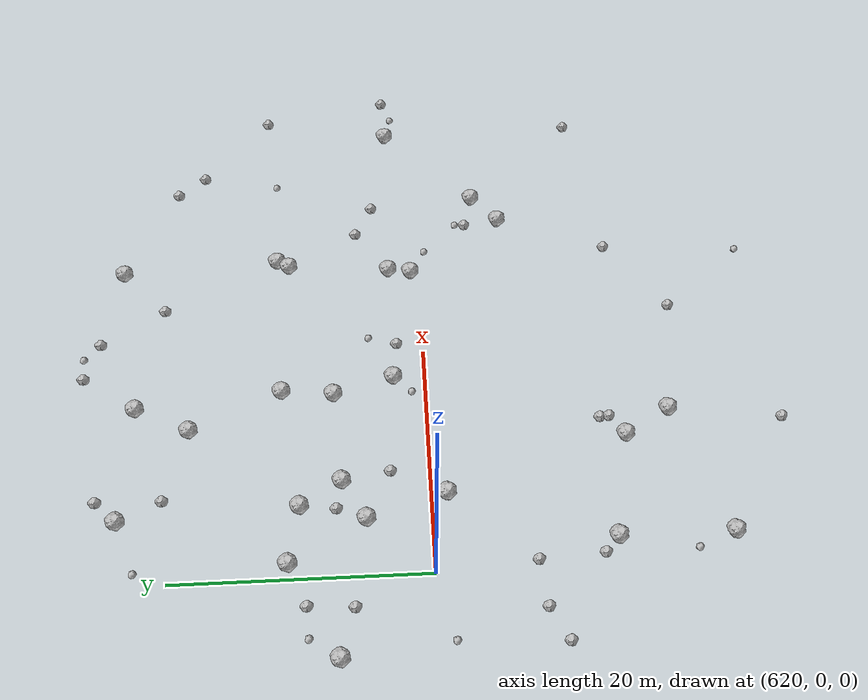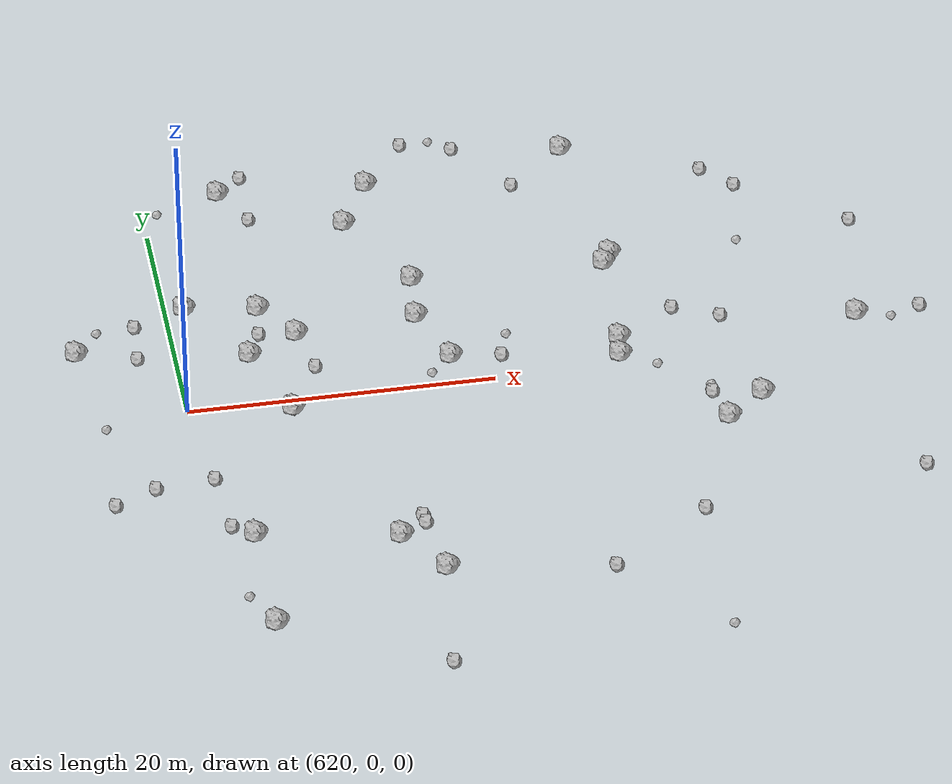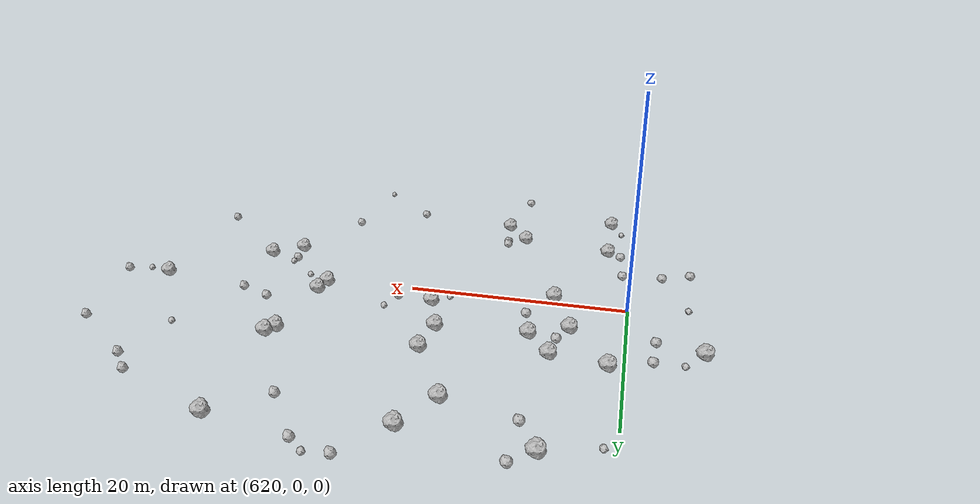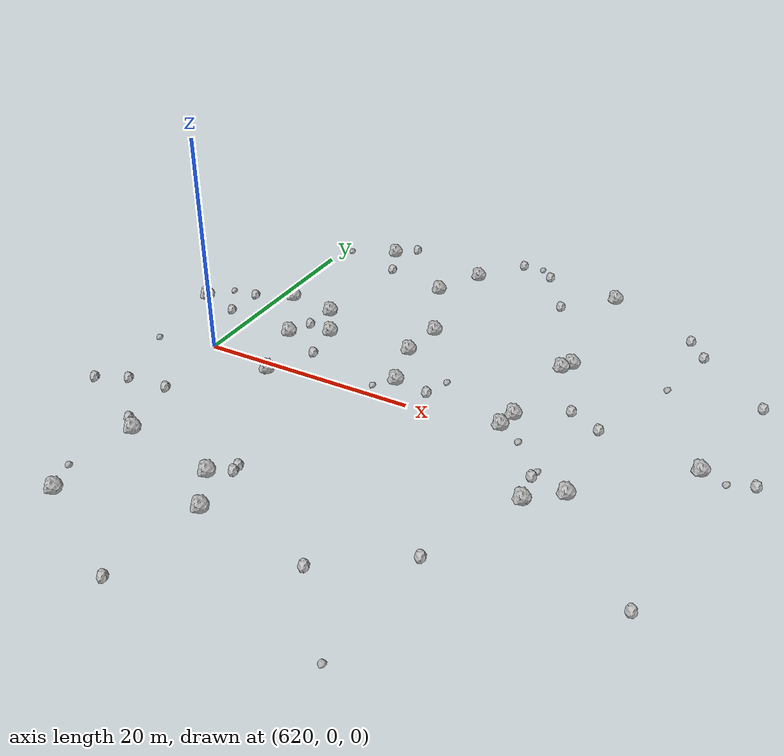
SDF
<sdf version="1.6">
 <world name="default">
  <include><uri>model://sun</uri></include>
  <model name="rock1_16_3">
   <include><uri>model://rock1</uri><pose>636.1177011447262 7.52968694985185 0.5 0 0 0</pose></include>
  </model>
  <model name="rock1_16_4">
   <include><uri>model://rock1</uri><pose>653.9009824726663 -7.1312983316846825 0.5 0 0 0</pose></include>
  </model>
  <model name="rock1_16_5">
   <include><uri>model://rock1</uri><pose>628.1033714798823 6.936606039108177 0.5 0 0 0</pose></include>
  </model>
  <model name="rock1_16_6">
   <include><uri>model://rock1</uri><pose>635.3813930248117 23.433400578919567 0.5 0 0 0</pose></include>
  </model>
  <model name="rock1_16_7">
   <include><uri>model://rock1</uri><pose>636.5498643619783 11.728430045967684 0.5 0 0 0</pose></include>
  </model>
  <model name="rock1_16_8">
   <include><uri>model://rock1</uri><pose>656.5503750046403 -4.957793701468628 0.5 0 0 0</pose></include>
  </model>
  <model name="rock1_16_9">
   <include><uri>model://rock1</uri><pose>622.4058559759957 -13.893687133124548 0.5 0 0 0</pose></include>
  </model>
  <model name="rock1_16_10">
   <include><uri>model://rock1</uri><pose>626.0439644891136 10.183324404042693 0.5 0 0 0</pose></include>
  </model>
  <model name="rock1_16_11">
   <include><uri>model://rock1</uri><pose>622.4063553891941 -22.767511159345453 0.5 0 0 0</pose></include>
  </model>
  <model name="rock1_16_12">
   <include><uri>model://rock1</uri><pose>624.7804005323859 5.072768186274125 0.5 0 0 0</pose></include>
  </model>
  <model name="rock1_16_13">
   <include><uri>model://rock1</uri><pose>648.7217100174425 2.706767140385139 0.5 0 0 0</pose></include>
  </model>
  <model name="rock1_16_14">
   <include><uri>model://rock1</uri><pose>625.3370095634511 24.10768976289026 0.5 0 0 0</pose></include>
  </model>
  <model name="rock1_16_15">
   <include><uri>model://rock1</uri><pose>649.2497628429069 25.403490633575657 0.5 0 0 0</pose></include>
  </model>
  <model name="rock1_16_16">
   <include><uri>model://rock1</uri><pose>649.4185990059722 11.285281188145106 0.5 0 0 0</pose></include>
  </model>
  <model name="rock1_16_17">
   <include><uri>model://rock1</uri><pose>621.2768869277942 11.017788109217882 0.5 0 0 0</pose></include>
  </model>
  <model name="rock1_16_18">
   <include><uri>model://rock1</uri><pose>613.7315426789736 7.15531615058115 0.5 0 0 0</pose></include>
  </model>
  <model name="rock1_16_19">
   <include><uri>model://rock1</uri><pose>637.5685669006639 2.6270326361622978 0.5 0 0 0</pose></include>
  </model>
  <model name="rock1_16_20">
   <include><uri>model://rock1</uri><pose>633.1805472473019 19.01981329298072 0.5 0 0 0</pose></include>
  </model>
  <model name="rock1_16_21">
   <include><uri>model://rock1</uri><pose>664.5596839305214 2.5644874953902246 0.5 0 0 0</pose></include>
  </model>
  <model name="rock1_16_22">
   <include><uri>model://rock1</uri><pose>650.0157153606729 12.30188350317757 0.5 0 0 0</pose></include>
  </model>
  <model name="rock1_16_23">
   <include><uri>model://rock1</uri><pose>631.2475597364939 -15.599968313407883 0.5 0 0 0</pose></include>
  </model>
  <model name="rock1_16_24">
   <include><uri>model://rock1</uri><pose>626.7117870903304 -1.1771119249277895 0.5 0 0 0</pose></include>
  </model>
  <model name="rock1_16_25">
   <include><uri>model://rock1</uri><pose>648.4067089831854 0.7974337033451029 0.5 0 0 0</pose></include>
  </model>
  <model name="rock1_16_26">
   <include><uri>model://rock1</uri><pose>633.4788823998858 -19.28917981795827 0.5 0 0 0</pose></include>
  </model>
  <model name="rock2_16_0">
   <include><uri>model://rock2</uri><pose>617.552932983565 6.030563482305006 0.3 0 0 0</pose></include>
  </model>
  <model name="rock2_16_1">
   <include><uri>model://rock2</uri><pose>645.0802319712126 21.65808539717571 0.3 0 0 0</pose></include>
  </model>
  <model name="rock2_16_2">
   <include><uri>model://rock2</uri><pose>626.9230000297073 20.727652852419602 0.3 0 0 0</pose></include>
  </model>
  <model name="rock2_16_3">
   <include><uri>model://rock2</uri><pose>627.036624563629 25.85064750769535 0.3 0 0 0</pose></include>
  </model>
  <model name="rock2_16_4">
   <include><uri>model://rock2</uri><pose>625.6626359905381 7.363700817689306 0.3 0 0 0</pose></include>
  </model>
  <model name="rock2_16_5">
   <include><uri>model://rock2</uri><pose>658.0867661296007 21.276481781939935 0.3 0 0 0</pose></include>
  </model>
  <model name="rock2_16_6">
   <include><uri>model://rock2</uri><pose>655.6879209418606 4.03355963725938 0.3 0 0 0</pose></include>
  </model>
  <model name="rock2_16_7">
   <include><uri>model://rock2</uri><pose>664.9626674024889 -14.241860764414863 0.3 0 0 0</pose></include>
  </model>
  <model name="rock2_16_8">
   <include><uri>model://rock2</uri><pose>659.9555300217933 18.988594810487832 0.3 0 0 0</pose></include>
  </model>
  <model name="rock2_16_9">
   <include><uri>model://rock2</uri><pose>614.2582622076308 -9.37152771490626 0.3 0 0 0</pose></include>
  </model>
  <model name="rock2_16_10">
   <include><uri>model://rock2</uri><pose>617.7815073360565 9.588396178363105 0.3 0 0 0</pose></include>
  </model>
  <model name="rock2_16_11">
   <include><uri>model://rock2</uri><pose>616.940865635218 -8.065744716380333 0.3 0 0 0</pose></include>
  </model>
  <model name="rock2_16_12">
   <include><uri>model://rock2</uri><pose>666.6429968910944 13.425721107985161 0.3 0 0 0</pose></include>
  </model>
  <model name="rock2_16_13">
   <include><uri>model://rock2</uri><pose>628.7422778290061 3.132815985524381 0.3 0 0 0</pose></include>
  </model>
  <model name="rock2_16_14">
   <include><uri>model://rock2</uri><pose>640.8088814299239 2.251611990283763 0.3 0 0 0</pose></include>
  </model>
  <model name="rock2_16_15">
   <include><uri>model://rock2</uri><pose>641.8363529131572 26.778240463628094 0.3 0 0 0</pose></include>
  </model>
  <model name="rock2_16_16">
   <include><uri>model://rock2</uri><pose>632.2350816155573 -28.303191097838607 0.3 0 0 0</pose></include>
  </model>
  <model name="rock2_16_17">
   <include><uri>model://rock2</uri><pose>652.7506521688917 5.4830860389257765 0.3 0 0 0</pose></include>
  </model>
  <model name="rock2_16_18">
   <include><uri>model://rock2</uri><pose>650.2904775148093 -16.21189663072876 0.3 0 0 0</pose></include>
  </model>
  <model name="rock2_16_19">
   <include><uri>model://rock2</uri><pose>653.3847333685513 -4.173649364002671 0.3 0 0 0</pose></include>
  </model>
  <model name="rock2_16_20">
   <include><uri>model://rock2</uri><pose>620.7028582336939 -7.7037417440076865 0.3 0 0 0</pose></include>
  </model>
  <model name="rock2_16_21">
   <include><uri>model://rock2</uri><pose>643.6822952150561 -20.880943217586406 0.3 0 0 0</pose></include>
  </model>
  <model name="rock2_16_22">
   <include><uri>model://rock2</uri><pose>621.0487286767998 -12.757758987729286 0.3 0 0 0</pose></include>
  </model>
  <model name="rock2_16_23">
   <include><uri>model://rock2</uri><pose>638.4491703980441 27.888794709296057 0.3 0 0 0</pose></include>
  </model>
  <model name="rock2_16_24">
   <include><uri>model://rock2</uri><pose>632.9393288159168 -14.481882197858383 0.3 0 0 0</pose></include>
  </model>
  <model name="rock2_16_25">
   <include><uri>model://rock2</uri><pose>632.8777830081325 -13.752584261917772 0.3 0 0 0</pose></include>
  </model>
  <model name="rock2_16_26">
   <include><uri>model://rock2</uri><pose>668.8114708989514 2.77997011314109 0.3 0 0 0</pose></include>
  </model>
  <model name="rock3_16_0">
   <include><uri>model://rock3</uri><pose>640.4280168277427 28.015516753866862 0.2 0 0 0</pose></include>
  </model>
  <model name="rock3_16_1">
   <include><uri>model://rock3</uri><pose>615.2685632360248 9.389087428959812 0.2 0 0 0</pose></include>
  </model>
  <model name="rock3_16_2">
   <include><uri>model://rock3</uri><pose>636.053443619674 1.1279631453930214 0.2 0 0 0</pose></include>
  </model>
  <model name="rock3_16_3">
   <include><uri>model://rock3</uri><pose>658.6731473263487 12.461139321171906 0.2 0 0 0</pose></include>
  </model>
  <model name="rock3_16_4">
   <include><uri>model://rock3</uri><pose>621.2740377633512 11.10505224789891 0.2 0 0 0</pose></include>
  </model>
  <model name="rock3_16_5">
   <include><uri>model://rock3</uri><pose>641.5176452575553 4.541874028678855 0.2 0 0 0</pose></include>
  </model>
  <model name="rock3_16_6">
   <include><uri>model://rock3</uri><pose>650.5594232373898 -0.5193916878012708 0.2 0 0 0</pose></include>
  </model>
  <model name="rock3_16_7">
   <include><uri>model://rock3</uri><pose>614.6500356219128 -1.2525862242287964 0.2 0 0 0</pose></include>
  </model>
  <model name="rock3_16_8">
   <include><uri>model://rock3</uri><pose>666.7009107932064 1.968420611809158 0.2 0 0 0</pose></include>
  </model>
  <model name="rock3_16_9">
   <include><uri>model://rock3</uri><pose>626.6612849497635 -1.4170250881568975 0.2 0 0 0</pose></include>
  </model>
  <model name="rock3_16_10">
   <include><uri>model://rock3</uri><pose>621.1247909443912 -19.891285629750286 0.2 0 0 0</pose></include>
  </model>
  <model name="rock3_16_11">
   <include><uri>model://rock3</uri><pose>649.5440675358622 -27.749932262310164 0.2 0 0 0</pose></include>
  </model>
  <model name="rock3_16_12">
   <include><uri>model://rock3</uri><pose>620.9489078473101 22.473086772754115 0.2 0 0 0</pose></include>
  </model>
  <model name="rock3_16_13">
   <include><uri>model://rock3</uri><pose>653.4764806969818 -3.3882126065595166 0.2 0 0 0</pose></include>
  </model>
 </world>
</sdf>
